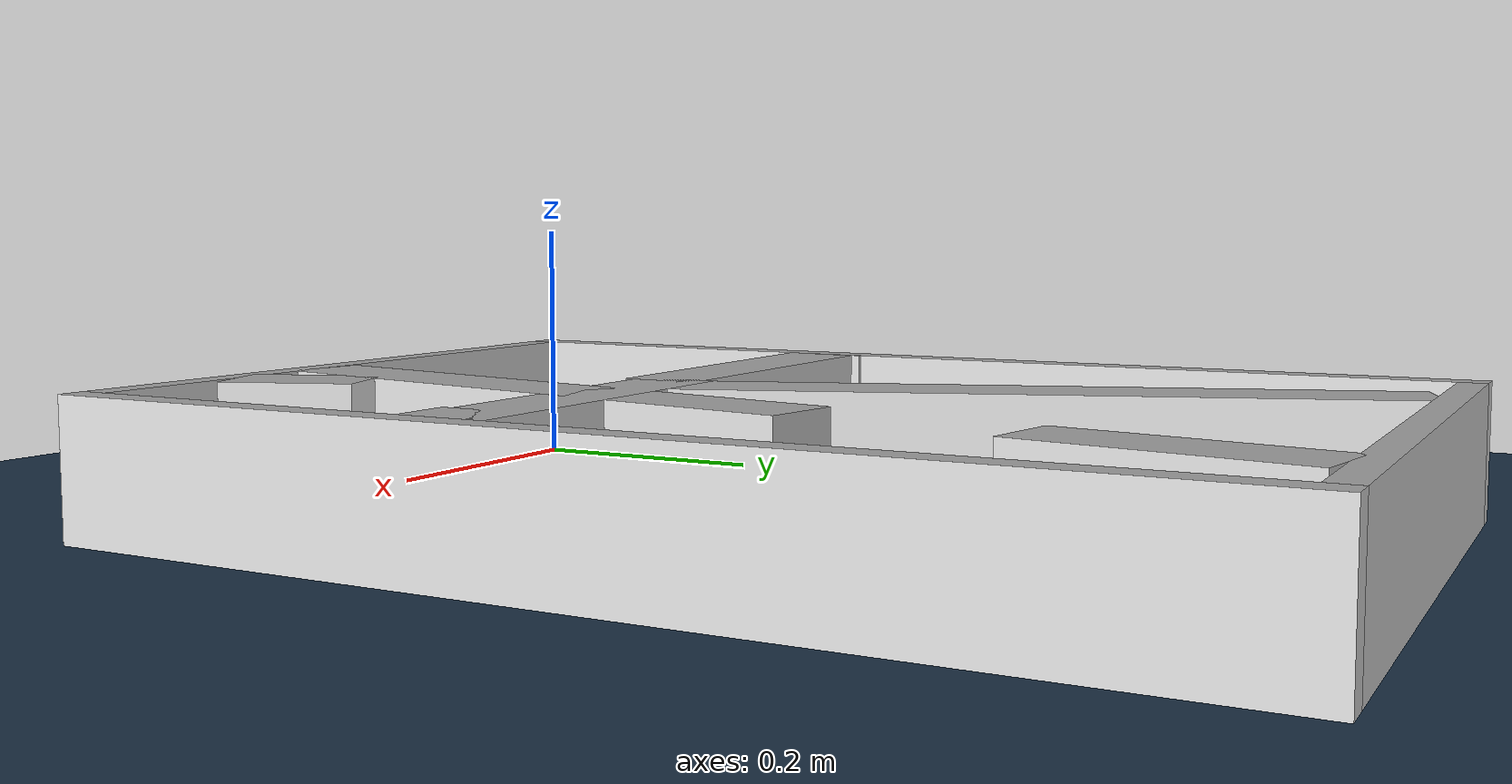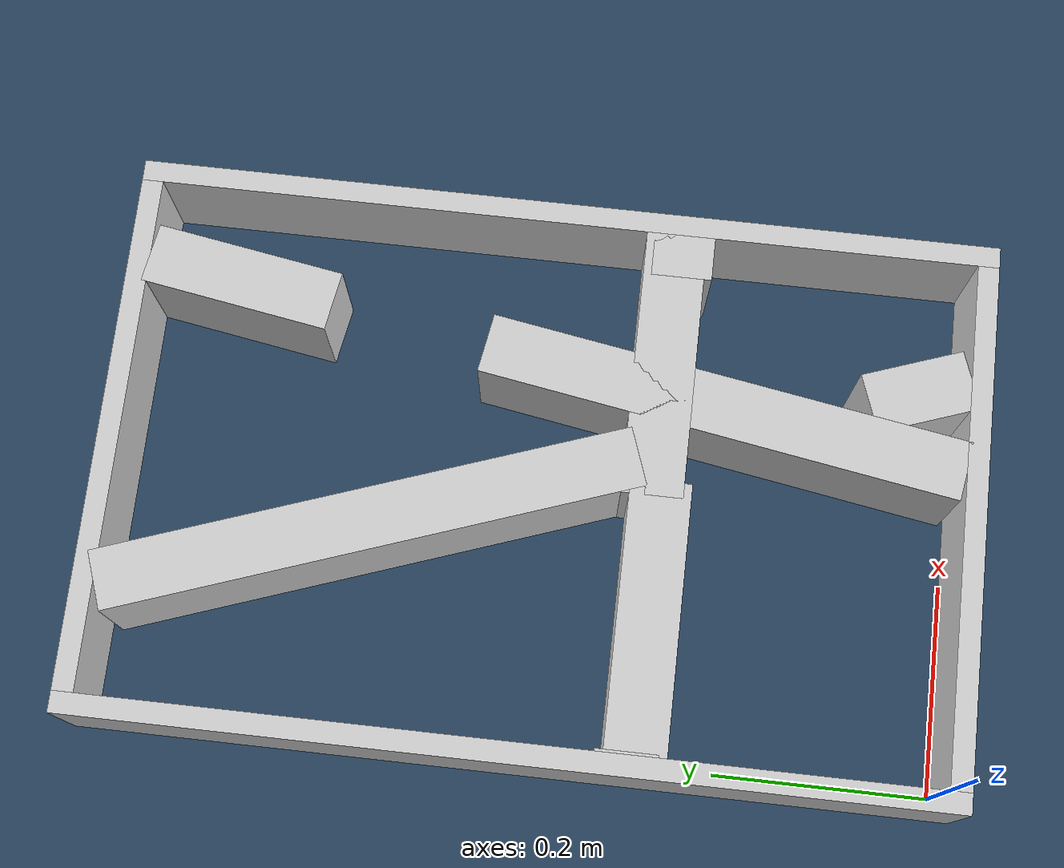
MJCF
<?xml version="1.0" ?>
<mujoco model="generated_real_template">
  <compiler angle="degree"/>
  <option timestep="0.002" integrator="implicitfast" iterations="100" cone="elliptic"/>
  <default>
    <geom density="1"/>
  </default>
  <asset>
    <texture builtin="gradient" height="3072" rgb1="0.3 0.5 0.7" rgb2="0 0 0" type="skybox" width="512"/>
    <texture builtin="checker" height="300" mark="edge" markrgb="0.8 0.8 0.8" name="groundplane" rgb1="0.2 0.3 0.4" rgb2="0.1 0.2 0.3" type="2d" width="300"/>
    <material name="groundplane" reflectance="0.2" texrepeat="5 5" texture="groundplane" texuniform="true"/>
  </asset>
  <worldbody>
    <light dir="0 0 -1" directional="true" pos="0 0 1.5"/>
    <geom name="floor" type="plane" condim="4" friction="0.5 0.005 0.001" material="groundplane" size="0 0 0.05"/>
    <body name="walls">
      <geom name="wall_boundary_left" type="box" condim="4" friction="1.0 0.005 0.0001" rgba="0.8 0.8 0.8 1" pos="-0.010000 0.387500 0.050000" euler="0 0 0.000000" size="0.010000 0.407500 0.050000"/>
      <geom name="wall_boundary_right" type="box" condim="4" friction="1.0 0.005 0.0001" rgba="0.8 0.8 0.8 1" pos="0.500000 0.387500 0.050000" euler="0 0 0.000000" size="0.010000 0.407500 0.050000"/>
      <geom name="wall_boundary_bottom" type="box" condim="4" friction="1.0 0.005 0.0001" rgba="0.8 0.8 0.8 1" pos="0.245000 -0.010000 0.050000" euler="0 0 0.000000" size="0.245000 0.010000 0.050000"/>
      <geom name="wall_boundary_top" type="box" condim="4" friction="1.0 0.005 0.0001" rgba="0.8 0.8 0.8 1" pos="0.245000 0.785000 0.050000" euler="0 0 0.000000" size="0.245000 0.010000 0.050000"/>
      <geom name="wall_inner_1_1" type="box" condim="4" friction="1.0 0.005 0.0001" rgba="0.8 0.8 0.8 1" pos="0.403187 0.686141 0.050000" euler="0 0 -99.444120" size="0.090080 0.028500 0.050000"/>
      <geom name="wall_inner_1_2" type="box" condim="4" friction="1.0 0.005 0.0001" rgba="0.8 0.8 0.8 1" pos="0.326549 0.225409 0.050000" euler="0 0 -99.444120" size="0.228506 0.028500 0.050000"/>
      <geom name="wall_inner_2_1" type="box" condim="4" friction="1.0 0.005 0.0001" rgba="0.8 0.8 0.8 1" pos="0.186163 0.536814 0.050000" euler="0 0 -70.427038" size="0.252793 0.028500 0.050000"/>
      <geom name="wall_inner_2_2" type="box" condim="4" friction="1.0 0.005 0.0001" rgba="0.8 0.8 0.8 1" pos="0.360532 0.046396 0.050000" euler="0 0 -70.427038" size="0.049242 0.028500 0.050000"/>
      <geom name="wall_inner_3_1" type="box" condim="4" friction="1.0 0.005 0.0001" rgba="0.8 0.8 0.8 1" pos="0.124684 0.276226 0.050000" euler="0 0 0.000000" size="0.124684 0.028500 0.050000"/>
      <geom name="wall_inner_3_2" type="box" condim="4" friction="1.0 0.005 0.0001" rgba="0.8 0.8 0.8 1" pos="0.469055 0.276226 0.050000" euler="0 0 0.000000" size="0.020945 0.028500 0.050000"/>
      <geom name="wall_inner_4_1" type="box" condim="4" friction="1.0 0.005 0.0001" rgba="0.8 0.8 0.8 1" pos="0.001212 0.283687 0.050000" euler="0 0 0.000000" size="0.001212 0.028500 0.050000"/>
      <geom name="wall_inner_4_2" type="box" condim="4" friction="1.0 0.005 0.0001" rgba="0.8 0.8 0.8 1" pos="0.362623 0.283687 0.050000" euler="0 0 0.000000" size="0.127377 0.028500 0.050000"/>
    </body>
  </worldbody>
</mujoco>
